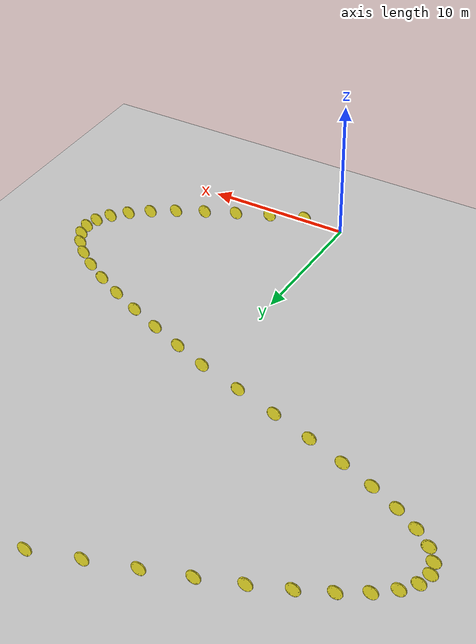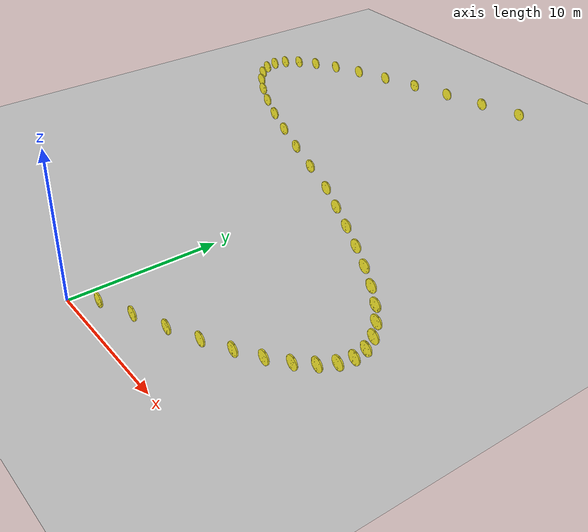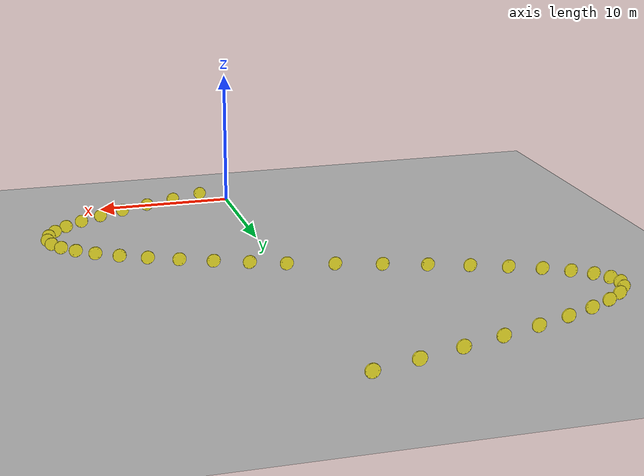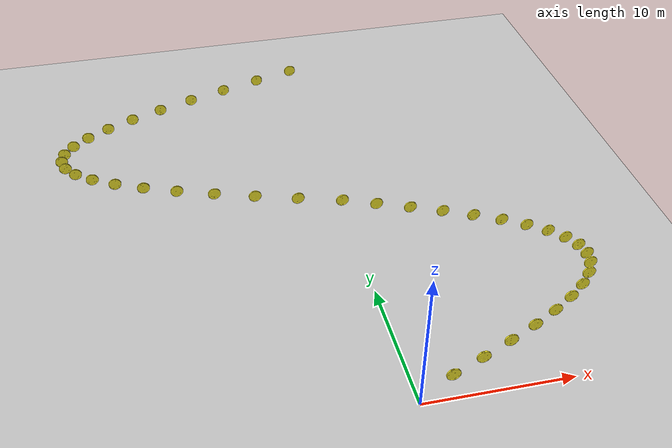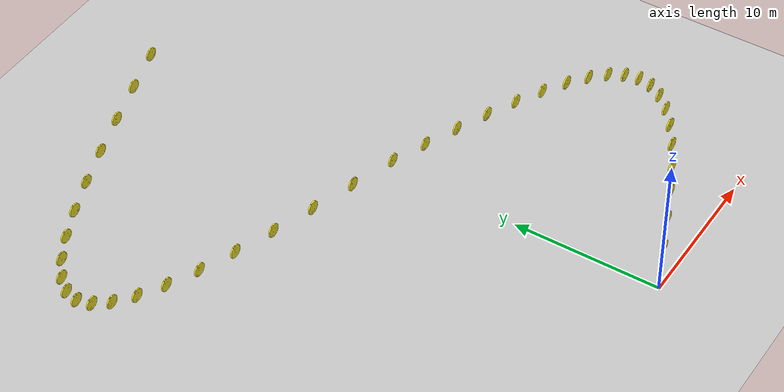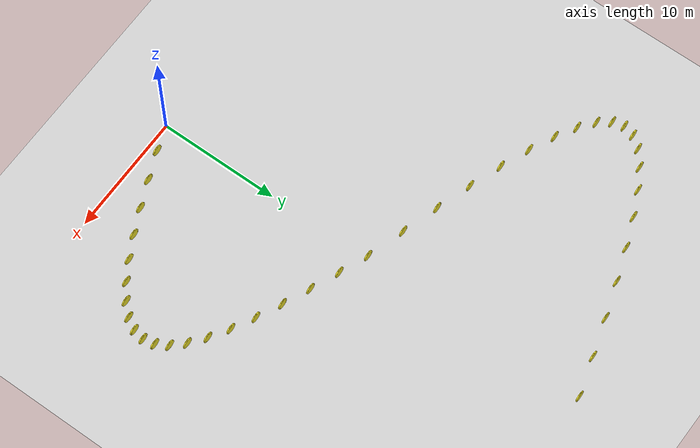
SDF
<?xml version="1.0" encoding="utf-8"?>

<sdf version="1.6">
  <world name="coins">
    <gui fullscreen="0">
      <camera name="user_camera">
        <pose frame="">-40 40 20 0 0.667643 -1</pose>
        <view_controller>orbit</view_controller>
        <projection_type>perspective</projection_type>
      </camera>
    </gui>
    <!-- WORLD SETTINGS -->
    <scene>
      <ambient>1.0 1.0 1.0 1.0</ambient>
      <shadows>false</shadows>
    </scene>
    <spherical_coordinates>
      <heading_deg>180</heading_deg>
      <!-- Appleton Tower coordinates -->
      <latitude_deg>55.944400</latitude_deg>
      <longitude_deg>-3.18629</longitude_deg>
    </spherical_coordinates>
    <light name="sun" type="directional">
      <cast_shadows>1</cast_shadows>
      <pose frame="">0 0 10 0 -0 0</pose>
      <diffuse>0.8 0.8 0.8 1</diffuse>
      <specular>0.1 0.1 0.1 1</specular>
      <attenuation>
        <range>1000</range>
        <constant>0.9</constant>
        <linear>0.01</linear>
        <quadratic>0.001</quadratic>
      </attenuation>
      <direction>-0.5 0.5 -1</direction>
    </light>
    <!-- MODELS -->
    <include>
      <uri>model://ground_plane/</uri>
      <pose>0 0 0 0 0 0</pose>
    </include>
    <model name="coin_1">
      <pose>2.346516975603463 0.9424777960769379 0 0 0 0</pose>
      <include>
        <static>false</static>
        <uri>model://crazy_coins</uri>
      </include>
    </model>
    <model name="coin_2">
      <pose>4.635254915624211 1.8849555921538759 0 0 0 0</pose>
      <include>
        <static>false</static>
        <uri>model://crazy_coins</uri>
      </include>
    </model>
    <model name="coin_3">
      <pose>6.809857496093201 2.827433388230814 0 0 0 0</pose>
      <include>
        <static>false</static>
        <uri>model://crazy_coins</uri>
      </include>
    </model>
    <model name="coin_4">
      <pose>8.816778784387097 3.7699111843077517 0 0 0 0</pose>
      <include>
        <static>false</static>
        <uri>model://crazy_coins</uri>
      </include>
    </model>
    <model name="coin_5">
      <pose>10.606601717798211 4.71238898038469 0 0 0 0</pose>
      <include>
        <static>false</static>
        <uri>model://crazy_coins</uri>
      </include>
    </model>
    <model name="coin_6">
      <pose>12.135254915624213 5.654866776461628 0 0 0 0</pose>
      <include>
        <static>false</static>
        <uri>model://crazy_coins</uri>
      </include>
    </model>
    <model name="coin_7">
      <pose>13.365097862825516 6.5973445725385655 0 0 0 0</pose>
      <include>
        <static>false</static>
        <uri>model://crazy_coins</uri>
      </include>
    </model>
    <model name="coin_8">
      <pose>14.265847744427303 7.5398223686155035 0 0 0 0</pose>
      <include>
        <static>false</static>
        <uri>model://crazy_coins</uri>
      </include>
    </model>
    <model name="coin_9">
      <pose>14.815325108927066 8.482300164692441 0 0 0 0</pose>
      <include>
        <static>false</static>
        <uri>model://crazy_coins</uri>
      </include>
    </model>
    <model name="coin_10">
      <pose>15.0 9.42477796076938 0 0 0 0</pose>
      <include>
        <static>false</static>
        <uri>model://crazy_coins</uri>
      </include>
    </model>
    <model name="coin_11">
      <pose>14.815325108927066 10.367255756846317 0 0 0 0</pose>
      <include>
        <static>false</static>
        <uri>model://crazy_coins</uri>
      </include>
    </model>
    <model name="coin_12">
      <pose>14.265847744427305 11.309733552923255 0 0 0 0</pose>
      <include>
        <static>false</static>
        <uri>model://crazy_coins</uri>
      </include>
    </model>
    <model name="coin_13">
      <pose>13.365097862825518 12.252211349000193 0 0 0 0</pose>
      <include>
        <static>false</static>
        <uri>model://crazy_coins</uri>
      </include>
    </model>
    <model name="coin_14">
      <pose>12.135254915624213 13.194689145077131 0 0 0 0</pose>
      <include>
        <static>false</static>
        <uri>model://crazy_coins</uri>
      </include>
    </model>
    <model name="coin_15">
      <pose>10.606601717798213 14.137166941154069 0 0 0 0</pose>
      <include>
        <static>false</static>
        <uri>model://crazy_coins</uri>
      </include>
    </model>
    <model name="coin_16">
      <pose>8.816778784387099 15.079644737231007 0 0 0 0</pose>
      <include>
        <static>false</static>
        <uri>model://crazy_coins</uri>
      </include>
    </model>
    <model name="coin_17">
      <pose>6.809857496093203 16.022122533307943 0 0 0 0</pose>
      <include>
        <static>false</static>
        <uri>model://crazy_coins</uri>
      </include>
    </model>
    <model name="coin_18">
      <pose>4.635254915624213 16.964600329384883 0 0 0 0</pose>
      <include>
        <static>false</static>
        <uri>model://crazy_coins</uri>
      </include>
    </model>
    <model name="coin_19">
      <pose>2.3465169756034645 17.907078125461823 0 0 0 0</pose>
      <include>
        <static>false</static>
        <uri>model://crazy_coins</uri>
      </include>
    </model>
    <model name="coin_20">
      <pose>1.83697019872103e-15 18.84955592153876 0 0 0 0</pose>
      <include>
        <static>false</static>
        <uri>model://crazy_coins</uri>
      </include>
    </model>
    <model name="coin_21">
      <pose>-3.1286893008046146 19.792033717615695 0 0 0 0</pose>
      <include>
        <static>false</static>
        <uri>model://crazy_coins</uri>
      </include>
    </model>
    <model name="coin_22">
      <pose>-6.1803398874989455 20.734511513692635 0 0 0 0</pose>
      <include>
        <static>false</static>
        <uri>model://crazy_coins</uri>
      </include>
    </model>
    <model name="coin_23">
      <pose>-9.079809994790933 21.676989309769574 0 0 0 0</pose>
      <include>
        <static>false</static>
        <uri>model://crazy_coins</uri>
      </include>
    </model>
    <model name="coin_24">
      <pose>-11.75570504584946 22.61946710584651 0 0 0 0</pose>
      <include>
        <static>false</static>
        <uri>model://crazy_coins</uri>
      </include>
    </model>
    <model name="coin_25">
      <pose>-14.14213562373095 23.561944901923447 0 0 0 0</pose>
      <include>
        <static>false</static>
        <uri>model://crazy_coins</uri>
      </include>
    </model>
    <model name="coin_26">
      <pose>-16.180339887498945 24.504422698000386 0 0 0 0</pose>
      <include>
        <static>false</static>
        <uri>model://crazy_coins</uri>
      </include>
    </model>
    <model name="coin_27">
      <pose>-17.820130483767358 25.446900494077326 0 0 0 0</pose>
      <include>
        <static>false</static>
        <uri>model://crazy_coins</uri>
      </include>
    </model>
    <model name="coin_28">
      <pose>-19.02113032590307 26.389378290154262 0 0 0 0</pose>
      <include>
        <static>false</static>
        <uri>model://crazy_coins</uri>
      </include>
    </model>
    <model name="coin_29">
      <pose>-19.753766811902754 27.3318560862312 0 0 0 0</pose>
      <include>
        <static>false</static>
        <uri>model://crazy_coins</uri>
      </include>
    </model>
    <model name="coin_30">
      <pose>-20.0 28.274333882308138 0 0 0 0</pose>
      <include>
        <static>false</static>
        <uri>model://crazy_coins</uri>
      </include>
    </model>
    <model name="coin_31">
      <pose>-19.753766811902757 29.216811678385078 0 0 0 0</pose>
      <include>
        <static>false</static>
        <uri>model://crazy_coins</uri>
      </include>
    </model>
    <model name="coin_32">
      <pose>-19.021130325903073 30.159289474462014 0 0 0 0</pose>
      <include>
        <static>false</static>
        <uri>model://crazy_coins</uri>
      </include>
    </model>
    <model name="coin_33">
      <pose>-17.82013048376736 31.10176727053895 0 0 0 0</pose>
      <include>
        <static>false</static>
        <uri>model://crazy_coins</uri>
      </include>
    </model>
    <model name="coin_34">
      <pose>-16.180339887498953 32.044245066615886 0 0 0 0</pose>
      <include>
        <static>false</static>
        <uri>model://crazy_coins</uri>
      </include>
    </model>
    <model name="coin_35">
      <pose>-14.142135623730955 32.98672286269283 0 0 0 0</pose>
      <include>
        <static>false</static>
        <uri>model://crazy_coins</uri>
      </include>
    </model>
    <model name="coin_36">
      <pose>-11.755705045849467 33.929200658769766 0 0 0 0</pose>
      <include>
        <static>false</static>
        <uri>model://crazy_coins</uri>
      </include>
    </model>
    <model name="coin_37">
      <pose>-9.079809994790939 34.8716784548467 0 0 0 0</pose>
      <include>
        <static>false</static>
        <uri>model://crazy_coins</uri>
      </include>
    </model>
    <model name="coin_38">
      <pose>-6.180339887498953 35.814156250923645 0 0 0 0</pose>
      <include>
        <static>false</static>
        <uri>model://crazy_coins</uri>
      </include>
    </model>
    <model name="coin_39">
      <pose>-3.1286893008046226 36.75663404700058 0 0 0 0</pose>
      <include>
        <static>false</static>
        <uri>model://crazy_coins</uri>
      </include>
    </model>
    <model name="coin_40">
      <pose>-4.898587196589413e-15 37.69911184307752 0 0 0 0</pose>
      <include>
        <static>false</static>
        <uri>model://crazy_coins</uri>
      </include>
    </model>
  </world>
</sdf>

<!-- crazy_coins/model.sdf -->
<!-- Only put coins in this model. All the links will spin -->
<sdf version="1.4">
  <model name="coins">
    <static>0</static>
    <link name="coin_link">
      <gravity>0</gravity>
      <pose>0.0 0.0 1 0 0 0</pose>
      <visual name="coin_12_Visual">
        <pose>0 0 0 0 0 0</pose>
        <geometry>
          <mesh>
            <uri>model://crazy_coins/meshes/coin.dae</uri>
            <scale>0.4 0.4 0.4</scale>
          </mesh>
        </geometry>
        <material>
          <script>
            <uri>file://media/materials/scripts/gazebo.material</uri>
            <name>Gazebo/Yellow</name>
          </script>
        </material>
      </visual>
    </link>

    <plugin name="coins_manager_plugin" filename="libcoins_manager_plugin.so">
      <goal_coin>coin_39</goal_coin>
      <robot_name>labrob</robot_name>
      <update_rate>1.0</update_rate>
      <spin_velocity>1.570796327</spin_velocity>
    </plugin>
  </model>
</sdf>
